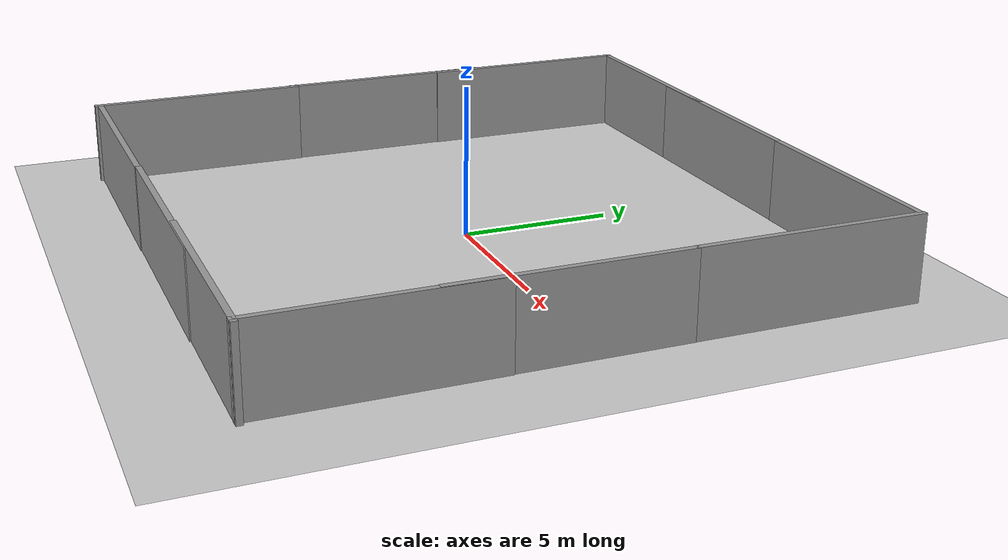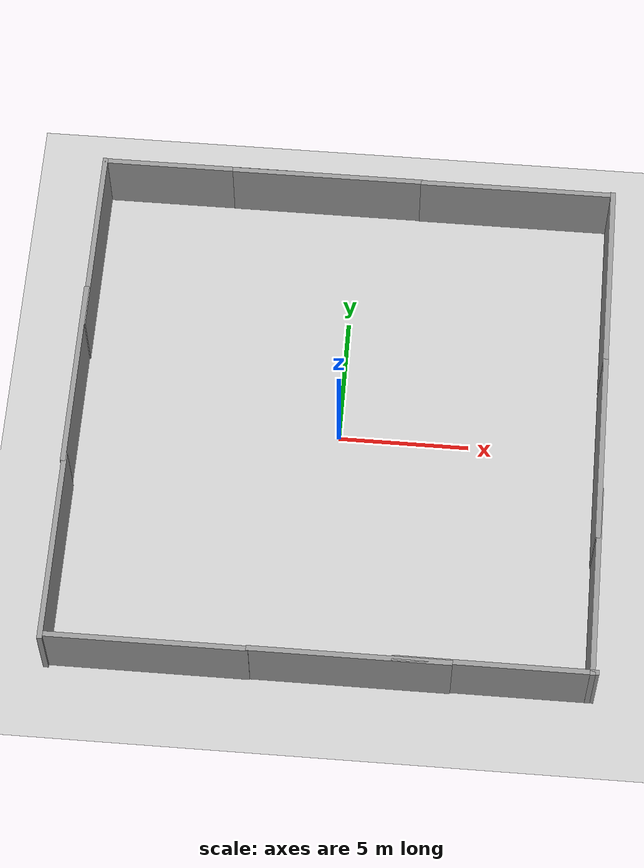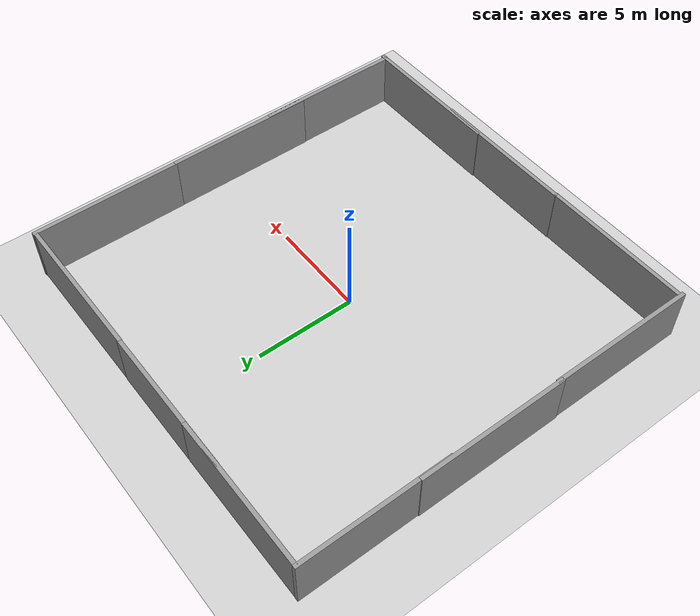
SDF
<sdf version="1.7">
 <world name="default">
  <light name="sun" type="directional">
   <pose>0 0 10 0 -0 0</pose>
   <diffuse>0.8 0.8 0.8 1</diffuse>
   <specular>0.2 0.2 0.2 1</specular>
   <attenuation>
    <range>1000</range>
    <constant>0.9</constant>
    <linear>0.01</linear>
    <quadratic>0.001</quadratic>
   </attenuation>
   <direction>-0.5 0.1 -0.9</direction>
   <spot><inner_angle>0</inner_angle><outer_angle>0</outer_angle><falloff>0</falloff></spot>
  </light>
  <model name="ground_plane">
   <static>1</static>
   <link name="link">
    <collision name="collision">
     <geometry><plane><normal>0 0 1</normal><size>100 100</size></plane></geometry>
     <surface><friction><ode><mu>100</mu><mu2>50</mu2></ode></friction></surface>
    </collision>
    <visual name="visual">
     <cast_shadows>0</cast_shadows>
     <geometry><plane><normal>0 0 1</normal><size>100 100</size></plane></geometry>
     <material>
      <script><uri>file://media/materials/scripts/gazebo.material</uri><name>Gazebo/Grey</name></script>
     </material>
    </visual>
   </link>
  </model>
  <gravity>0 0 -9.8</gravity>
  <magnetic_field>6e-06 2.3e-05 -4.2e-05</magnetic_field>
  <atmosphere type="adiabatic"/>
  <physics type="ode">
   <max_step_size>0.001</max_step_size>
   <real_time_factor>1</real_time_factor>
   <real_time_update_rate>1000</real_time_update_rate>
  </physics>
  <scene><ambient>0.4 0.4 0.4 1</ambient><background>0.7 0.7 0.7 1</background><shadows>1</shadows></scene>
  <spherical_coordinates>
   <surface_model>EARTH_WGS84</surface_model>
   <latitude_deg>0</latitude_deg>
   <longitude_deg>0</longitude_deg>
   <elevation>0</elevation>
   <heading_deg>0</heading_deg>
  </spherical_coordinates>
  <model name="grey_wall">
   <static>1</static>
   <link name="link">
    <pose>0 0 1.4 0 -0 0</pose>
    <collision name="collision"><geometry><box><size>7.5 0.2 2.8</size></box></geometry></collision>
    <visual name="visual">
     <cast_shadows>0</cast_shadows>
     <geometry><box><size>7.5 0.2 2.8</size></box></geometry>
     <material>
      <script>
       <uri>model://grey_wall/materials/scripts</uri>
       <uri>model://grey_wall/materials/textures</uri>
       <name>vrc/grey_wall</name>
      </script>
     </material>
    </visual>
   </link>
   <pose>-6.25571 -10.0787 0 0 -0 0</pose>
  </model>
  <model name="grey_wall_0">
   <static>1</static>
   <link name="link">
    <pose>0 0 1.4 0 -0 0</pose>
    <collision name="collision"><geometry><box><size>7.5 0.2 2.8</size></box></geometry></collision>
    <visual name="visual">
     <cast_shadows>0</cast_shadows>
     <geometry><box><size>7.5 0.2 2.8</size></box></geometry>
     <material>
      <script>
       <uri>model://grey_wall/materials/scripts</uri>
       <uri>model://grey_wall/materials/textures</uri>
       <name>vrc/grey_wall</name>
      </script>
     </material>
    </visual>
   </link>
   <pose>1.1549 -10.052 0 0 -0 0</pose>
  </model>
  <model name="grey_wall_1">
   <static>1</static>
   <link name="link">
    <pose>0 0 1.4 0 -0 0</pose>
    <collision name="collision"><geometry><box><size>7.5 0.2 2.8</size></box></geometry></collision>
    <visual name="visual">
     <cast_shadows>0</cast_shadows>
     <geometry><box><size>7.5 0.2 2.8</size></box></geometry>
     <material>
      <script>
       <uri>model://grey_wall/materials/scripts</uri>
       <uri>model://grey_wall/materials/textures</uri>
       <name>vrc/grey_wall</name>
      </script>
     </material>
    </visual>
   </link>
   <pose>6.44555 -10.0124 0 0 -0 0</pose>
  </model>
  <model name="grey_wall_1_clone">
   <static>1</static>
   <link name="link">
    <pose>0 0 1.4 0 -0 0</pose>
    <collision name="collision"><geometry><box><size>7.5 0.2 2.8</size></box></geometry></collision>
    <visual name="visual">
     <cast_shadows>0</cast_shadows>
     <geometry><box><size>7.5 0.2 2.8</size></box></geometry>
     <material>
      <script>
       <uri>model://grey_wall/materials/scripts</uri>
       <uri>model://grey_wall/materials/textures</uri>
       <name>vrc/grey_wall</name>
      </script>
     </material>
    </visual>
   </link>
   <pose>6.17869 10.1124 0 0 -0 0</pose>
  </model>
  <model name="grey_wall_1_clone_0">
   <static>1</static>
   <link name="link">
    <pose>0 0 1.4 0 -0 0</pose>
    <collision name="collision"><geometry><box><size>7.5 0.2 2.8</size></box></geometry></collision>
    <visual name="visual">
     <cast_shadows>0</cast_shadows>
     <geometry><box><size>7.5 0.2 2.8</size></box></geometry>
     <material>
      <script>
       <uri>model://grey_wall/materials/scripts</uri>
       <uri>model://grey_wall/materials/textures</uri>
       <name>vrc/grey_wall</name>
      </script>
     </material>
    </visual>
   </link>
   <pose>-1.24242 10.1295 0 0 -0 0</pose>
  </model>
  <model name="grey_wall_1_clone_1">
   <static>1</static>
   <link name="link">
    <pose>0 0 1.4 0 -0 0</pose>
    <collision name="collision"><geometry><box><size>7.5 0.2 2.8</size></box></geometry></collision>
    <visual name="visual">
     <cast_shadows>0</cast_shadows>
     <geometry><box><size>7.5 0.2 2.8</size></box></geometry>
     <material>
      <script>
       <uri>model://grey_wall/materials/scripts</uri>
       <uri>model://grey_wall/materials/textures</uri>
       <name>vrc/grey_wall</name>
      </script>
     </material>
    </visual>
   </link>
   <pose>-6.29988 10.1355 0 0 -0 0</pose>
  </model>
  <model name="grey_wall_2">
   <static>1</static>
   <link name="link">
    <pose>0 0 1.4 0 -0 0</pose>
    <collision name="collision"><geometry><box><size>7.5 0.2 2.8</size></box></geometry></collision>
    <visual name="visual">
     <cast_shadows>0</cast_shadows>
     <geometry><box><size>7.5 0.2 2.8</size></box></geometry>
     <material>
      <script>
       <uri>model://grey_wall/materials/scripts</uri>
       <uri>model://grey_wall/materials/textures</uri>
       <name>vrc/grey_wall</name>
      </script>
     </material>
    </visual>
   </link>
   <pose>-10.0836 -6.529 0 0 -0 1.56835</pose>
  </model>
  <model name="grey_wall_2_clone">
   <static>1</static>
   <link name="link">
    <pose>0 0 1.4 0 -0 0</pose>
    <collision name="collision"><geometry><box><size>7.5 0.2 2.8</size></box></geometry></collision>
    <visual name="visual">
     <cast_shadows>0</cast_shadows>
     <geometry><box><size>7.5 0.2 2.8</size></box></geometry>
     <material>
      <script>
       <uri>model://grey_wall/materials/scripts</uri>
       <uri>model://grey_wall/materials/textures</uri>
       <name>vrc/grey_wall</name>
      </script>
     </material>
    </visual>
   </link>
   <pose>-10.1103 0.664342 0 0 -0 1.56835</pose>
  </model>
  <model name="grey_wall_2_clone_clone">
   <static>1</static>
   <link name="link">
    <pose>0 0 1.4 0 -0 0</pose>
    <collision name="collision"><geometry><box><size>7.5 0.2 2.8</size></box></geometry></collision>
    <visual name="visual">
     <cast_shadows>0</cast_shadows>
     <geometry><box><size>7.5 0.2 2.8</size></box></geometry>
     <material>
      <script>
       <uri>model://grey_wall/materials/scripts</uri>
       <uri>model://grey_wall/materials/textures</uri>
       <name>vrc/grey_wall</name>
      </script>
     </material>
    </visual>
   </link>
   <pose>-10.0556 6.49596 0 0 -0 1.56835</pose>
  </model>
  <model name="grey_wall_2_clone_clone_0">
   <static>1</static>
   <link name="link">
    <pose>0 0 1.4 0 -0 0</pose>
    <collision name="collision"><geometry><box><size>7.5 0.2 2.8</size></box></geometry></collision>
    <visual name="visual">
     <cast_shadows>0</cast_shadows>
     <geometry><box><size>7.5 0.2 2.8</size></box></geometry>
     <material>
      <script>
       <uri>model://grey_wall/materials/scripts</uri>
       <uri>model://grey_wall/materials/textures</uri>
       <name>vrc/grey_wall</name>
      </script>
     </material>
    </visual>
   </link>
   <pose>9.96849 6.4896 0 0 -0 1.56835</pose>
  </model>
  <model name="grey_wall_2_clone_clone_1">
   <static>1</static>
   <link name="link">
    <pose>0 0 1.4 0 -0 0</pose>
    <collision name="collision"><geometry><box><size>7.5 0.2 2.8</size></box></geometry></collision>
    <visual name="visual">
     <cast_shadows>0</cast_shadows>
     <geometry><box><size>7.5 0.2 2.8</size></box></geometry>
     <material>
      <script>
       <uri>model://grey_wall/materials/scripts</uri>
       <uri>model://grey_wall/materials/textures</uri>
       <name>vrc/grey_wall</name>
      </script>
     </material>
    </visual>
   </link>
   <pose>9.95886 -0.925565 0 0 -0 1.56835</pose>
  </model>
  <model name="grey_wall_2_clone_clone_2">
   <static>1</static>
   <link name="link">
    <pose>0 0 1.4 0 -0 0</pose>
    <collision name="collision"><geometry><box><size>7.5 0.2 2.8</size></box></geometry></collision>
    <visual name="visual">
     <cast_shadows>0</cast_shadows>
     <geometry><box><size>7.5 0.2 2.8</size></box></geometry>
     <material>
      <script>
       <uri>model://grey_wall/materials/scripts</uri>
       <uri>model://grey_wall/materials/textures</uri>
       <name>vrc/grey_wall</name>
      </script>
     </material>
    </visual>
   </link>
   <pose>9.97696 -6.37055 0 0 -0 1.56835</pose>
  </model>
 </world>
</sdf>
